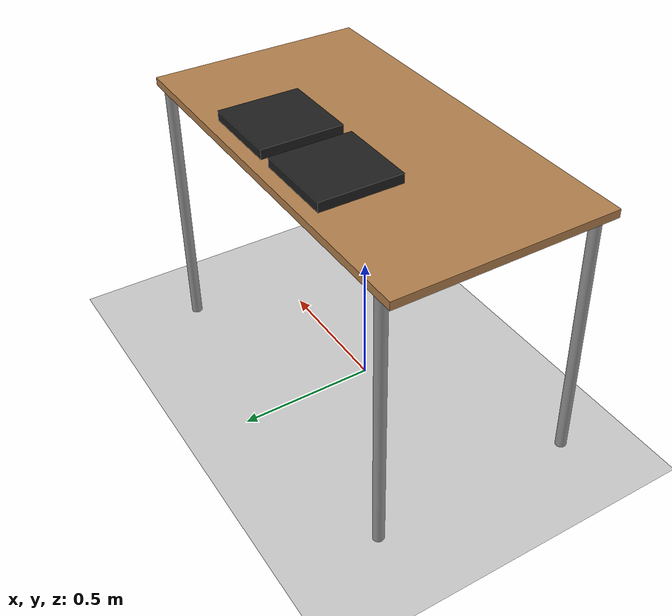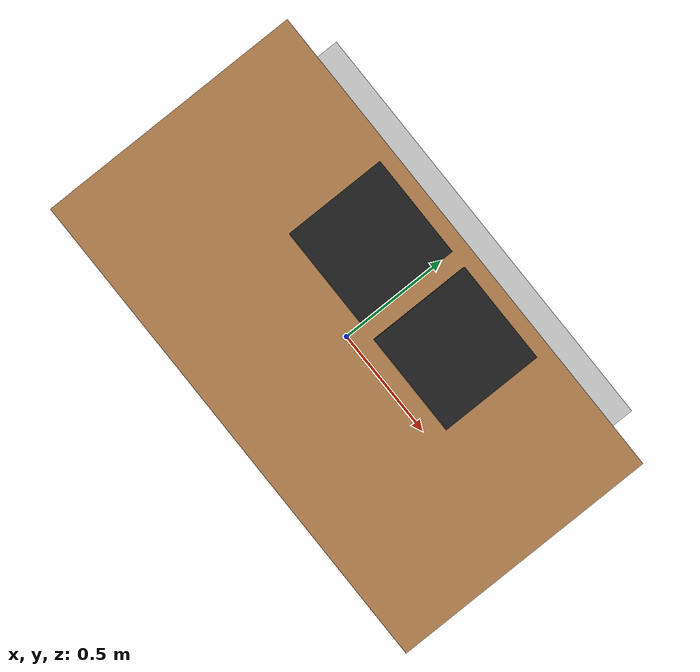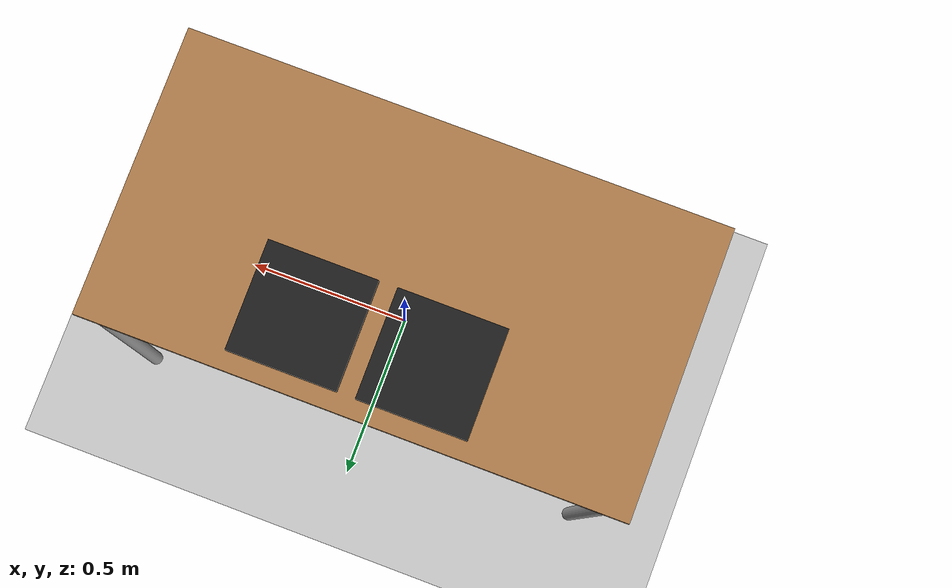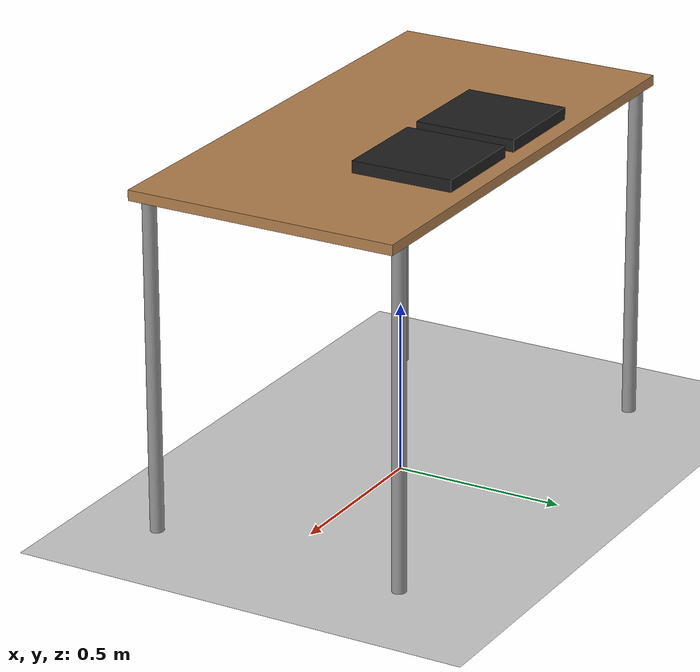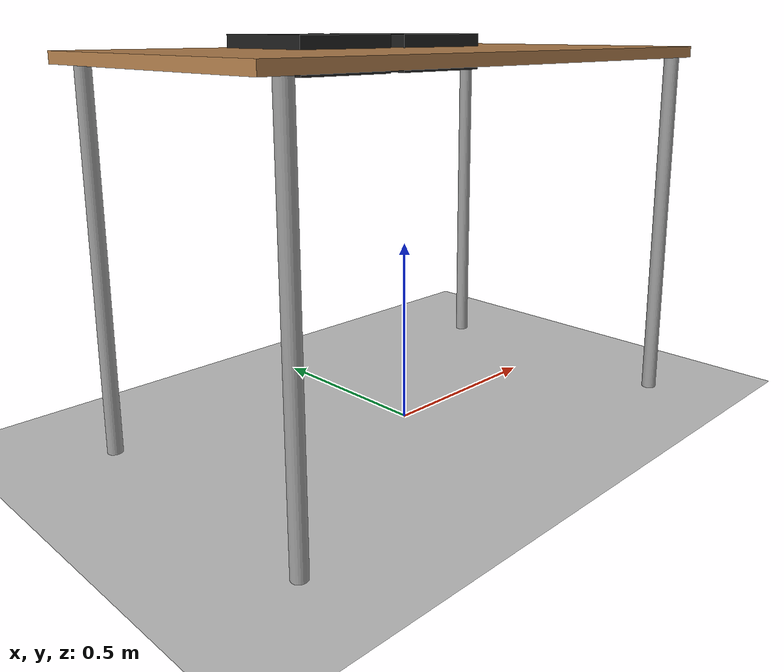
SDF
<sdf version="1.4">
 <world name="empty">
  <include><uri>model://sun</uri></include>
  <include><uri>model://ground_plane</uri></include>
  <model name="table">
   <static>1</static>
   <link name="link">
    <collision name="surface">
     <pose>0 0 1 0 -0 0</pose>
     <geometry><box><size>1.5 0.8 0.033</size></box></geometry>
     <surface><friction><ode><mu>0.6</mu><mu2>0.6</mu2></ode></friction></surface>
    </collision>
    <visual name="visual1">
     <pose>0 0 1 0 -0 0</pose>
     <geometry><box><size>1.5 0.8 0.03</size></box></geometry>
     <material>
      <script><uri>file://media/materials/scripts/gazebo.material</uri><name>Gazebo/Wood</name></script>
     </material>
    </visual>
    <collision name="front_left_leg">
     <pose>0.68 0.38 0.5 0 -0 0</pose>
     <geometry><cylinder><radius>0.02</radius><length>1</length></cylinder></geometry>
    </collision>
    <visual name="front_left_leg">
     <pose>0.68 0.38 0.5 0 -0 0</pose>
     <geometry><cylinder><radius>0.02</radius><length>1</length></cylinder></geometry>
     <material>
      <script><uri>file://media/materials/scripts/gazebo.material</uri><name>Gazebo/Grey</name></script>
     </material>
    </visual>
    <collision name="front_right_leg">
     <pose>0.68 -0.38 0.5 0 -0 0</pose>
     <geometry><cylinder><radius>0.02</radius><length>1</length></cylinder></geometry>
    </collision>
    <visual name="front_right_leg">
     <pose>0.68 -0.38 0.5 0 -0 0</pose>
     <geometry><cylinder><radius>0.02</radius><length>1</length></cylinder></geometry>
     <material>
      <script><uri>file://media/materials/scripts/gazebo.material</uri><name>Gazebo/Grey</name></script>
     </material>
    </visual>
    <collision name="back_right_leg">
     <pose>-0.68 -0.38 0.5 0 -0 0</pose>
     <geometry><cylinder><radius>0.02</radius><length>1</length></cylinder></geometry>
    </collision>
    <visual name="back_right_leg">
     <pose>-0.68 -0.38 0.5 0 -0 0</pose>
     <geometry><cylinder><radius>0.02</radius><length>1</length></cylinder></geometry>
     <material>
      <script><uri>file://media/materials/scripts/gazebo.material</uri><name>Gazebo/Grey</name></script>
     </material>
    </visual>
    <collision name="back_left_leg">
     <pose>-0.68 0.38 0.5 0 -0 0</pose>
     <geometry><cylinder><radius>0.02</radius><length>1</length></cylinder></geometry>
    </collision>
    <visual name="back_left_leg">
     <pose>-0.68 0.38 0.5 0 -0 0</pose>
     <geometry><cylinder><radius>0.02</radius><length>1</length></cylinder></geometry>
     <material>
      <script><uri>file://media/materials/scripts/gazebo.material</uri><name>Gazebo/Grey</name></script>
     </material>
    </visual>
   </link>
  </model>
  <model name="table_box_model">
   <static>true</static>
   <pose>-0.15 0.2 1 0 0 0</pose>
   <link name="table_box_link">
    <inertial>
     <mass>1</mass>
     <inertia>
      <ixx>0.166667</ixx>
      <ixy>0</ixy>
      <ixz>0</ixz>
      <iyy>0.166667</iyy>
      <iyz>0</iyz>
      <izz>0.166667</izz>
     </inertia>
    </inertial>
    <collision name="collision">
     <geometry><box><size>0.30 0.30 0.1</size></box></geometry>
     <surface><friction><ode><mu>0.6</mu><mu2>0.6</mu2></ode></friction></surface>
    </collision>
    <visual name="visual">
     <geometry><box><size>0.30 0.30 0.1</size></box></geometry>
     <material>
      <script><name>Gazebo/Black</name><uri>file://media/materials/scripts/gazebo.material</uri></script>
     </material>
    </visual>
   </link>
  </model>
  <model name="table_box_model">
   <static>true</static>
   <pose>0.2 0.2 1 0 0 0</pose>
   <link name="table_box_link">
    <inertial>
     <mass>1</mass>
     <inertia>
      <ixx>0.166667</ixx>
      <ixy>0</ixy>
      <ixz>0</ixz>
      <iyy>0.166667</iyy>
      <iyz>0</iyz>
      <izz>0.166667</izz>
     </inertia>
    </inertial>
    <collision name="collision">
     <geometry><box><size>0.30 0.30 0.1</size></box></geometry>
     <surface><friction><ode><mu>0.6</mu><mu2>0.6</mu2></ode></friction></surface>
    </collision>
    <visual name="visual">
     <geometry><box><size>0.30 0.30 0.1</size></box></geometry>
     <material>
      <script><name>Gazebo/Black</name><uri>file://media/materials/scripts/gazebo.material</uri></script>
     </material>
    </visual>
   </link>
  </model>
 </world>
</sdf>
